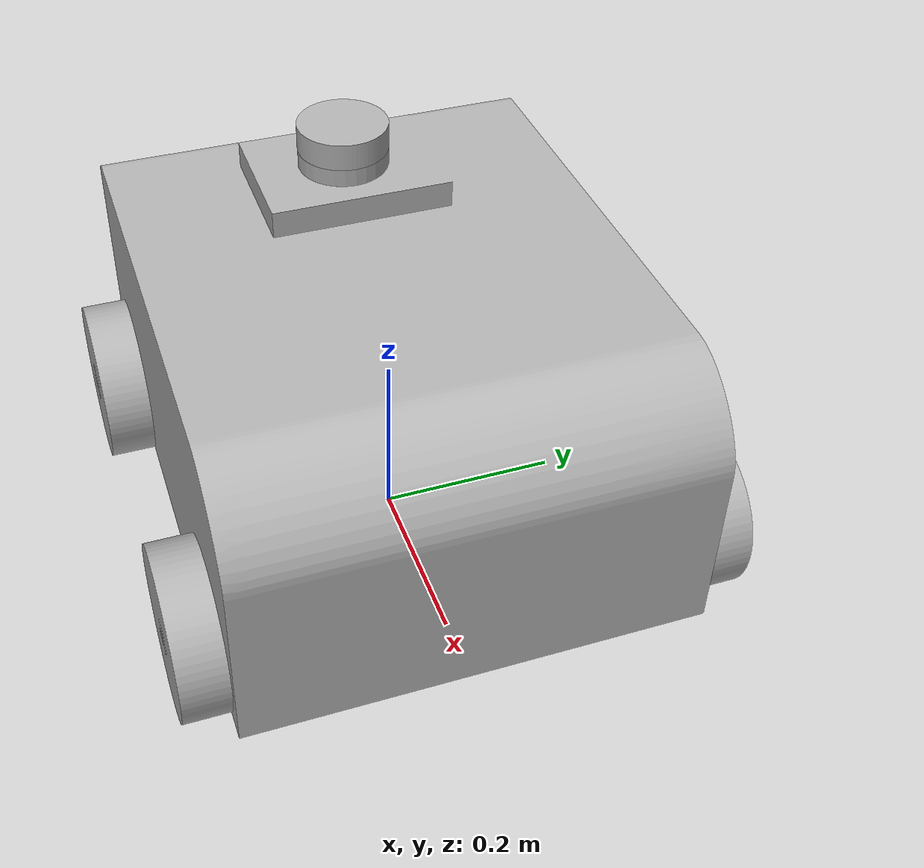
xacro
<?xml version="1.0" ?>
<robot name="demo_rover" xmlns:xacro="http://www.ros.org/wiki/xacro">

<xacro:include filename="$(find demo_rover_description)/urdf/materials.xacro" />
<xacro:include filename="$(find demo_rover_description)/urdf/demo_rover.trans" />
<xacro:include filename="$(find demo_rover_description)/urdf/demo_rover.gazebo" />
<link name="base_link">
  <inertial>
    <origin xyz="-0.005837942586806629 -4.853221859138213e-05 0.18978110455710276" rpy="0 0 0"/>
    <mass value="95.33842627384524"/>
    <inertia ixx="2.707855" iyy="3.514635" izz="4.770347" ixy="2.7e-05" iyz="-0.000415" ixz="0.077055"/>
  </inertial>
  <visual>
    <origin xyz="0 0 0" rpy="0 0 0"/>
    <geometry>
      <mesh filename="package://demo_rover_description/meshes/base_link.stl" scale="0.001 0.001 0.001"/>
    </geometry>
    <material name="silver"/>
  </visual>
  <collision>
    <origin xyz="0 0 0" rpy="0 0 0"/>
    <geometry>
      <mesh filename="package://demo_rover_description/meshes/base_link.stl" scale="0.001 0.001 0.001"/>
    </geometry>
  </collision>
</link>

<link name="right_wheel_behind_1">
  <inertial>
    <origin xyz="5.551115123125783e-17 0.025000000000000078 0.0" rpy="0 0 0"/>
    <mass value="1.813091660203009"/>
    <inertia ixx="0.004049" iyy="0.007343" izz="0.004049" ixy="0.0" iyz="-0.0" ixz="-0.0"/>
  </inertial>
  <visual>
    <origin xyz="0.2 0.3 -0.1" rpy="0 0 0"/>
    <geometry>
      <mesh filename="package://demo_rover_description/meshes/right_wheel_behind_1.stl" scale="0.001 0.001 0.001"/>
    </geometry>
    <material name="silver"/>
  </visual>
  <collision>
    <origin xyz="0.2 0.3 -0.1" rpy="0 0 0"/>
    <geometry>
      <mesh filename="package://demo_rover_description/meshes/right_wheel_behind_1.stl" scale="0.001 0.001 0.001"/>
    </geometry>
  </collision>
</link>

<link name="right_wheel_front_1">
  <inertial>
    <origin xyz="5.551115123125783e-17 0.025000000000000022 0.0" rpy="0 0 0"/>
    <mass value="1.813091660203009"/>
    <inertia ixx="0.004049" iyy="0.007343" izz="0.004049" ixy="-0.0" iyz="0.0" ixz="-0.0"/>
  </inertial>
  <visual>
    <origin xyz="-0.2 0.3 -0.1" rpy="0 0 0"/>
    <geometry>
      <mesh filename="package://demo_rover_description/meshes/right_wheel_front_1.stl" scale="0.001 0.001 0.001"/>
    </geometry>
    <material name="silver"/>
  </visual>
  <collision>
    <origin xyz="-0.2 0.3 -0.1" rpy="0 0 0"/>
    <geometry>
      <mesh filename="package://demo_rover_description/meshes/right_wheel_front_1.stl" scale="0.001 0.001 0.001"/>
    </geometry>
  </collision>
</link>

<link name="left_wheel_front_1">
  <inertial>
    <origin xyz="5.551115123125783e-17 -0.02499999999999991 0.0" rpy="0 0 0"/>
    <mass value="1.813091660203009"/>
    <inertia ixx="0.004049" iyy="0.007343" izz="0.004049" ixy="0.0" iyz="-0.0" ixz="0.0"/>
  </inertial>
  <visual>
    <origin xyz="-0.2 -0.3 -0.1" rpy="0 0 0"/>
    <geometry>
      <mesh filename="package://demo_rover_description/meshes/left_wheel_front_1.stl" scale="0.001 0.001 0.001"/>
    </geometry>
    <material name="silver"/>
  </visual>
  <collision>
    <origin xyz="-0.2 -0.3 -0.1" rpy="0 0 0"/>
    <geometry>
      <mesh filename="package://demo_rover_description/meshes/left_wheel_front_1.stl" scale="0.001 0.001 0.001"/>
    </geometry>
  </collision>
</link>

<link name="left_wheel_behind_1">
  <inertial>
    <origin xyz="3.0531133177191805e-16 -0.024999999999999967 -5.551115123125783e-17" rpy="0 0 0"/>
    <mass value="1.813091660203009"/>
    <inertia ixx="0.004049" iyy="0.007343" izz="0.004049" ixy="-0.0" iyz="0.0" ixz="-0.0"/>
  </inertial>
  <visual>
    <origin xyz="0.2 -0.3 -0.1" rpy="0 0 0"/>
    <geometry>
      <mesh filename="package://demo_rover_description/meshes/left_wheel_behind_1.stl" scale="0.001 0.001 0.001"/>
    </geometry>
    <material name="silver"/>
  </visual>
  <collision>
    <origin xyz="0.2 -0.3 -0.1" rpy="0 0 0"/>
    <geometry>
      <mesh filename="package://demo_rover_description/meshes/left_wheel_behind_1.stl" scale="0.001 0.001 0.001"/>
    </geometry>
  </collision>
</link>

<link name="lidar_1">
  <inertial>
    <origin xyz="2.7755575615628914e-17 9.650038500203382e-18 0.015000000000000013" rpy="0 0 0"/>
    <mass value="0.3251548396465435"/>
    <inertia ixx="0.000228" iyy="0.000228" izz="0.000406" ixy="-0.0" iyz="0.0" ixz="-0.0"/>
  </inertial>
  <visual>
    <origin xyz="0.16 -0.0 -0.39" rpy="0 0 0"/>
    <geometry>
      <mesh filename="package://demo_rover_description/meshes/lidar_1.stl" scale="0.001 0.001 0.001"/>
    </geometry>
    <material name="silver"/>
  </visual>
  <collision>
    <origin xyz="0.16 -0.0 -0.39" rpy="0 0 0"/>
    <geometry>
      <mesh filename="package://demo_rover_description/meshes/lidar_1.stl" scale="0.001 0.001 0.001"/>
    </geometry>
  </collision>
</link>

<joint name="Revolute 1" type="continuous">
  <origin xyz="-0.2 -0.3 0.1" rpy="0 0 0"/>
  <parent link="base_link"/>
  <child link="right_wheel_behind_1"/>
  <axis xyz="0.0 1.0 0.0"/>
</joint>

<joint name="Revolute 2" type="continuous">
  <origin xyz="0.2 -0.3 0.1" rpy="0 0 0"/>
  <parent link="base_link"/>
  <child link="right_wheel_front_1"/>
  <axis xyz="0.0 1.0 0.0"/>
</joint>

<joint name="Revolute 3" type="continuous">
  <origin xyz="0.2 0.3 0.1" rpy="0 0 0"/>
  <parent link="base_link"/>
  <child link="left_wheel_front_1"/>
  <axis xyz="0.0 1.0 0.0"/>
</joint>

<joint name="Revolute 4" type="continuous">
  <origin xyz="-0.2 0.3 0.1" rpy="0 0 0"/>
  <parent link="base_link"/>
  <child link="left_wheel_behind_1"/>
  <axis xyz="0.0 1.0 0.0"/>
</joint>

<joint name="Rigid 5" type="fixed">
  <origin xyz="-0.16 0.0 0.39" rpy="0 0 0"/>
  <parent link="base_link"/>
  <child link="lidar_1"/>
</joint>

</robot>

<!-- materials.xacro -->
<robot name="demo_rover" xmlns:xacro="http://www.ros.org/wiki/xacro" >

<material name="silver">
  <color rgba="0.700 0.700 0.700 1.000"/>
</material>

</robot>

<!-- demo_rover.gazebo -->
<robot name="demo_rover" xmlns:xacro="http://www.ros.org/wiki/xacro" >

<xacro:property name="body_color" value="Gazebo/Silver" />

<gazebo>
  <plugin name="control" filename="libgazebo_ros_control.so"/>
</gazebo>
<gazebo reference="base_link">
  <material>${body_color}</material>
  <mu1>0.2</mu1>
  <mu2>0.2</mu2>
  <selfCollide>true</selfCollide>
  <gravity>true</gravity>
</gazebo>

<gazebo reference="right_wheel_behind_1">
  <material>${body_color}</material>
  <mu1>0.2</mu1>
  <mu2>0.2</mu2>
  <selfCollide>true</selfCollide>
</gazebo>

<gazebo reference="right_wheel_front_1">
  <material>${body_color}</material>
  <mu1>0.2</mu1>
  <mu2>0.2</mu2>
  <selfCollide>true</selfCollide>
</gazebo>

<gazebo reference="left_wheel_front_1">
  <material>${body_color}</material>
  <mu1>0.2</mu1>
  <mu2>0.2</mu2>
  <selfCollide>true</selfCollide>
</gazebo>

<gazebo reference="left_wheel_behind_1">
  <material>${body_color}</material>
  <mu1>0.2</mu1>
  <mu2>0.2</mu2>
  <selfCollide>true</selfCollide>
</gazebo>

<gazebo reference="lidar_1">
  <material>${body_color}</material>
  <mu1>0.2</mu1>
  <mu2>0.2</mu2>
  <selfCollide>true</selfCollide>
</gazebo>

</robot>
